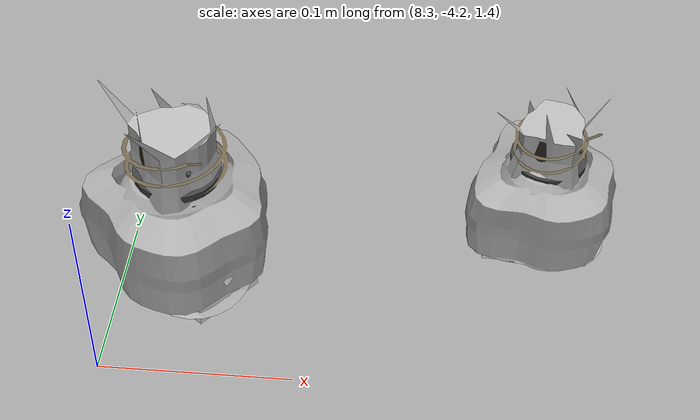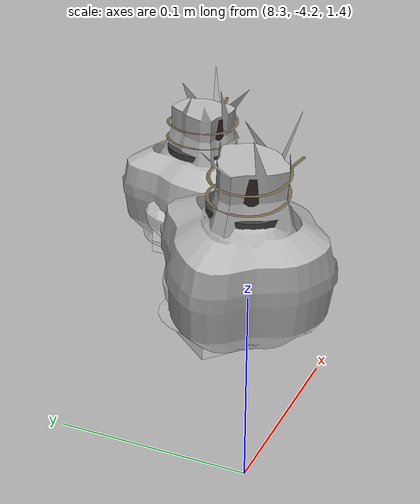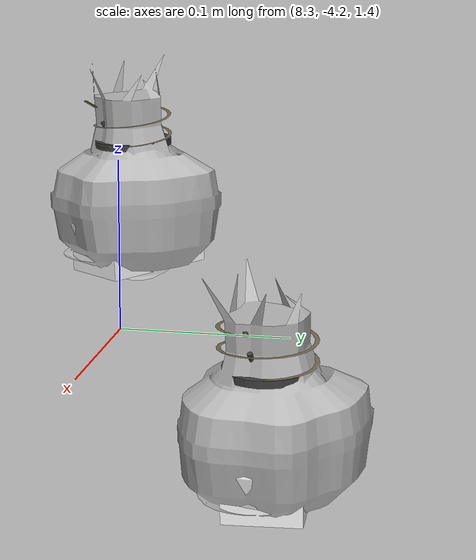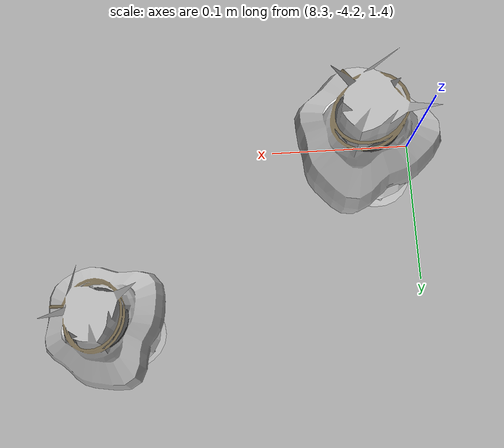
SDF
<sdf version="1.11">
 <world name="peach_orchard">
  <model name="ground">
   <static>true</static>
   <link name="link">
    <visual name="soil">
     <geometry><plane><normal>0 0 1</normal><size>32 22</size></plane></geometry>
     <material>
      <ambient>1 1 1 1</ambient>
      <diffuse>1 1 1 1</diffuse>
      <specular>0.1 0.1 0.1 1</specular>
      <pbr>
       <metal>
        <albedo_map>textures/soil_albedo.png</albedo_map>
        <normal_map type="tangent">textures/soil_normal.png</normal_map>
        <roughness>0.95</roughness>
        <metalness>0</metalness>
       </metal>
      </pbr>
     </material>
    </visual>
    <collision name="c_soil">
     <geometry><plane><normal>0 0 1</normal><size>32 22</size></plane></geometry>
    </collision>
   </link>
  </model>
  <model name="peach_tree_r4_t1_00">
   <pose>8.52069 -4.07651 1.38868 0 0.0577145 -0.325207</pose>
   <static>true</static>
   <link name="bag">
    <visual name="bag_mesh">
     <pose>0 0 0.0439617 0 0 -0</pose>
     <geometry>
      <mesh><uri>model://peach_sim/meshes/bagged_peach.glb</uri><scale>0.99378 1.20981 0.99913</scale></mesh>
     </geometry>
    </visual>
    <visual name="body">
     <pose>0 0 0.0259617 0 0 0</pose>
     <geometry><ellipsoid><radii>0.0372667 0.0314552 0.0280387</radii></ellipsoid></geometry>
     <material>
      <ambient>1 1 1 1</ambient>
      <diffuse>1 1 1 1</diffuse>
      <specular>0.1 0.1 0.1 1</specular>
      <pbr>
       <metal>
        <albedo_map>textures/paper_bag_albedo.png</albedo_map>
        <normal_map type="tangent">textures/paper_bag_normal.png</normal_map>
        <roughness>0.72</roughness>
        <metalness>0</metalness>
       </metal>
      </pbr>
     </material>
    </visual>
    <visual name="bottom_fold">
     <pose>0 0 0.012 0 0 0.35</pose>
     <geometry><box><size>0.0577634 0.0361734 0.022</size></box></geometry>
     <material>
      <ambient>1 1 1 1</ambient>
      <diffuse>1 1 1 1</diffuse>
      <specular>0.1 0.1 0.1 1</specular>
      <pbr>
       <metal>
        <albedo_map>textures/paper_bag_albedo.png</albedo_map>
        <normal_map type="tangent">textures/paper_bag_normal.png</normal_map>
        <roughness>0.8</roughness>
        <metalness>0</metalness>
       </metal>
      </pbr>
     </material>
    </visual>
    <visual name="fruit">
     <pose>0 0 0.0177244 0 0 0</pose>
     <geometry><sphere><radius>0.0246733</radius></sphere></geometry>
     <material>
      <ambient>1 1 1 1</ambient>
      <diffuse>1 1 1 1</diffuse>
      <specular>0.1 0.1 0.1 1</specular>
      <pbr>
       <metal>
        <albedo_map>textures/fruit_skin_albedo.png</albedo_map>
        <normal_map type="tangent">textures/fruit_skin_normal.png</normal_map>
        <roughness>0.55</roughness>
        <metalness>0</metalness>
       </metal>
      </pbr>
     </material>
    </visual>
    <visual name="neck">
     <pose>0 0 0.0609234 0 0 0</pose>
     <geometry><cylinder><radius>0.013</radius><length>0.018</length></cylinder></geometry>
     <material>
      <ambient>1 1 1 1</ambient>
      <diffuse>1 1 1 1</diffuse>
      <specular>0.1 0.1 0.1 1</specular>
      <pbr>
       <metal>
        <albedo_map>textures/paper_bag_albedo.png</albedo_map>
        <normal_map type="tangent">textures/paper_bag_normal.png</normal_map>
        <roughness>0.75</roughness>
        <metalness>0</metalness>
       </metal>
      </pbr>
     </material>
    </visual>
    <visual name="gather">
     <pose>0 0 0.0419234 0 0 0</pose>
     <geometry><cylinder><radius>0.019</radius><length>0.02</length></cylinder></geometry>
     <material>
      <ambient>1 1 1 1</ambient>
      <diffuse>1 1 1 1</diffuse>
      <specular>0.1 0.1 0.1 1</specular>
      <pbr>
       <metal>
        <albedo_map>textures/paper_bag_albedo.png</albedo_map>
        <normal_map type="tangent">textures/paper_bag_normal.png</normal_map>
        <roughness>0.8</roughness>
        <metalness>0</metalness>
       </metal>
      </pbr>
     </material>
    </visual>
    <visual name="inner_paper">
     <pose>0 0 0.0659234 0 0 0</pose>
     <geometry><cylinder><radius>0.01</radius><length>0.008</length></cylinder></geometry>
     <material>
      <ambient>0.180392 0.14902 0.133333 1</ambient>
      <diffuse>0.180392 0.14902 0.133333 1</diffuse>
      <specular>0.1 0.1 0.1 1</specular>
     </material>
    </visual>
    <visual name="wire_0">
     <pose>0 0 0.0559234 0 0 0</pose>
     <geometry><cylinder><radius>0.0205</radius><length>0.0035</length></cylinder></geometry>
     <material>
      <ambient>0.25 0.25 0.25 1</ambient>
      <diffuse>0.25 0.25 0.25 1</diffuse>
      <specular>0.1 0.1 0.1 1</specular>
     </material>
    </visual>
    <visual name="wire_1">
     <pose>0 0 0.0629234 0 0 0</pose>
     <geometry><cylinder><radius>0.0205</radius><length>0.0035</length></cylinder></geometry>
     <material>
      <ambient>0.25 0.25 0.25 1</ambient>
      <diffuse>0.25 0.25 0.25 1</diffuse>
      <specular>0.1 0.1 0.1 1</specular>
     </material>
    </visual>
    <visual name="wire_tail">
     <pose>0.01 0 0.0639234 0 0.521618 0</pose>
     <geometry><cylinder><radius>0.0012</radius><length>0.026</length></cylinder></geometry>
     <material>
      <ambient>0.25 0.25 0.25 1</ambient>
      <diffuse>0.25 0.25 0.25 1</diffuse>
      <specular>0.1 0.1 0.1 1</specular>
     </material>
    </visual>
    <collision name="c_body">
     <pose>0 0 0.0259617 0 0 0</pose>
     <geometry><cylinder><radius>0.0372667</radius><length>0.0519234</length></cylinder></geometry>
    </collision>
   </link>
  </model>
  <model name="peach_tree_r4_t1_01">
   <pose>8.34667 -4.17701 1.45 0 0.0435411 -1.02516</pose>
   <static>true</static>
   <link name="bag">
    <visual name="bag_mesh">
     <pose>0 0 0.0471352 0 0 -0</pose>
     <geometry>
      <mesh><uri>model://peach_sim/meshes/bagged_peach.glb</uri><scale>1.06054 1.23924 1.07125</scale></mesh>
     </geometry>
    </visual>
    <visual name="body">
     <pose>0 0 0.0291352 0 0 0</pose>
     <geometry><ellipsoid><radii>0.0397702 0.0322201 0.031466</radii></ellipsoid></geometry>
     <material>
      <ambient>1 1 1 1</ambient>
      <diffuse>1 1 1 1</diffuse>
      <specular>0.1 0.1 0.1 1</specular>
      <pbr>
       <metal>
        <albedo_map>textures/paper_bag_albedo.png</albedo_map>
        <normal_map type="tangent">textures/paper_bag_normal.png</normal_map>
        <roughness>0.72</roughness>
        <metalness>0</metalness>
       </metal>
      </pbr>
     </material>
    </visual>
    <visual name="bottom_fold">
     <pose>0 0 0.012 0 0 0.35</pose>
     <geometry><box><size>0.0616437 0.0370531 0.022</size></box></geometry>
     <material>
      <ambient>1 1 1 1</ambient>
      <diffuse>1 1 1 1</diffuse>
      <specular>0.1 0.1 0.1 1</specular>
      <pbr>
       <metal>
        <albedo_map>textures/paper_bag_albedo.png</albedo_map>
        <normal_map type="tangent">textures/paper_bag_normal.png</normal_map>
        <roughness>0.8</roughness>
        <metalness>0</metalness>
       </metal>
      </pbr>
     </material>
    </visual>
    <visual name="fruit">
     <pose>0 0 0.0207436 0 0 0</pose>
     <geometry><sphere><radius>0.0278133</radius></sphere></geometry>
     <material>
      <ambient>1 1 1 1</ambient>
      <diffuse>1 1 1 1</diffuse>
      <specular>0.1 0.1 0.1 1</specular>
      <pbr>
       <metal>
        <albedo_map>textures/fruit_skin_albedo.png</albedo_map>
        <normal_map type="tangent">textures/fruit_skin_normal.png</normal_map>
        <roughness>0.55</roughness>
        <metalness>0</metalness>
       </metal>
      </pbr>
     </material>
    </visual>
    <visual name="neck">
     <pose>0 0 0.0672704 0 0 0</pose>
     <geometry><cylinder><radius>0.013</radius><length>0.018</length></cylinder></geometry>
     <material>
      <ambient>1 1 1 1</ambient>
      <diffuse>1 1 1 1</diffuse>
      <specular>0.1 0.1 0.1 1</specular>
      <pbr>
       <metal>
        <albedo_map>textures/paper_bag_albedo.png</albedo_map>
        <normal_map type="tangent">textures/paper_bag_normal.png</normal_map>
        <roughness>0.75</roughness>
        <metalness>0</metalness>
       </metal>
      </pbr>
     </material>
    </visual>
    <visual name="gather">
     <pose>0 0 0.0482704 0 0 0</pose>
     <geometry><cylinder><radius>0.019</radius><length>0.02</length></cylinder></geometry>
     <material>
      <ambient>1 1 1 1</ambient>
      <diffuse>1 1 1 1</diffuse>
      <specular>0.1 0.1 0.1 1</specular>
      <pbr>
       <metal>
        <albedo_map>textures/paper_bag_albedo.png</albedo_map>
        <normal_map type="tangent">textures/paper_bag_normal.png</normal_map>
        <roughness>0.8</roughness>
        <metalness>0</metalness>
       </metal>
      </pbr>
     </material>
    </visual>
    <visual name="inner_paper">
     <pose>0 0 0.0722704 0 0 0</pose>
     <geometry><cylinder><radius>0.01</radius><length>0.008</length></cylinder></geometry>
     <material>
      <ambient>0.180392 0.14902 0.133333 1</ambient>
      <diffuse>0.180392 0.14902 0.133333 1</diffuse>
      <specular>0.1 0.1 0.1 1</specular>
     </material>
    </visual>
    <visual name="wire_0">
     <pose>0 0 0.0622704 0 0 0</pose>
     <geometry><cylinder><radius>0.0205</radius><length>0.0035</length></cylinder></geometry>
     <material>
      <ambient>0.25 0.25 0.25 1</ambient>
      <diffuse>0.25 0.25 0.25 1</diffuse>
      <specular>0.1 0.1 0.1 1</specular>
     </material>
    </visual>
    <visual name="wire_1">
     <pose>0 0 0.0692704 0 0 0</pose>
     <geometry><cylinder><radius>0.0205</radius><length>0.0035</length></cylinder></geometry>
     <material>
      <ambient>0.25 0.25 0.25 1</ambient>
      <diffuse>0.25 0.25 0.25 1</diffuse>
      <specular>0.1 0.1 0.1 1</specular>
     </material>
    </visual>
    <visual name="wire_tail">
     <pose>0.01 0 0.0702704 0 0.521618 0</pose>
     <geometry><cylinder><radius>0.0012</radius><length>0.026</length></cylinder></geometry>
     <material>
      <ambient>0.25 0.25 0.25 1</ambient>
      <diffuse>0.25 0.25 0.25 1</diffuse>
      <specular>0.1 0.1 0.1 1</specular>
     </material>
    </visual>
    <collision name="c_body">
     <pose>0 0 0.0291352 0 0 0</pose>
     <geometry><cylinder><radius>0.0397702</radius><length>0.0582704</length></cylinder></geometry>
    </collision>
   </link>
  </model>
 </world>
</sdf>
